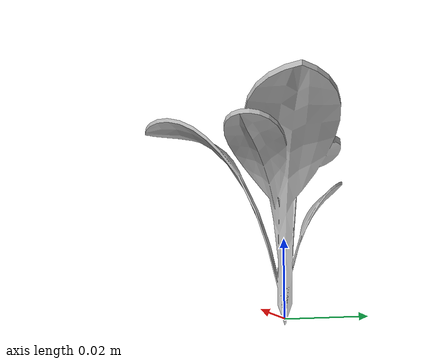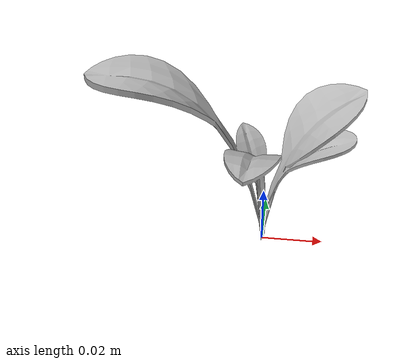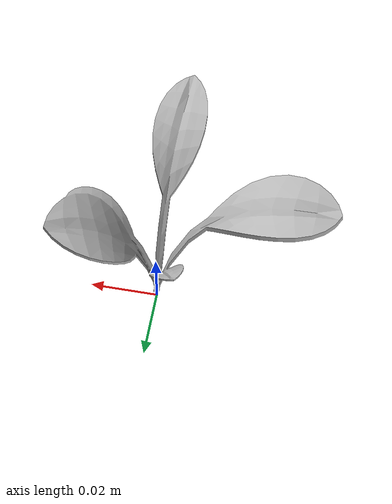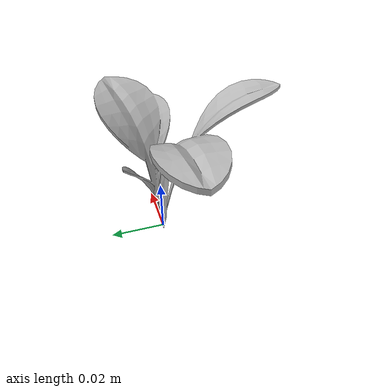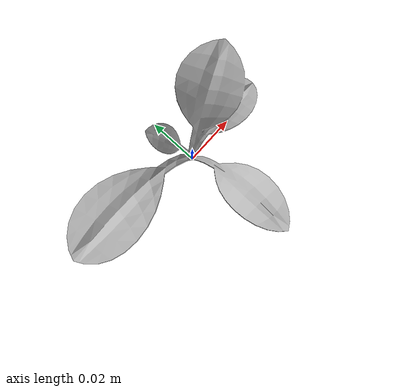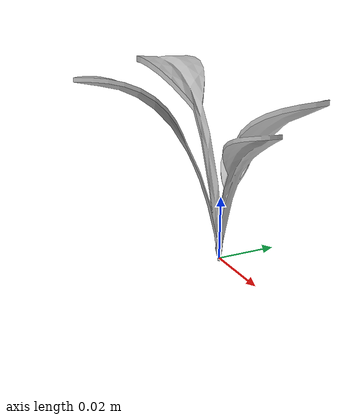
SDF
<sdf version="1.6">
  <model name="sugar_beet_11">
    <static>true</static>
    <link name="body">
      <visual name="visual">
        <geometry>
          <mesh>
            <uri>file:///sugar_beet_11/media/sugar_beet.dae</uri>
          </mesh>
        </geometry>
      </visual>
    </link>
  </model>
</sdf>
